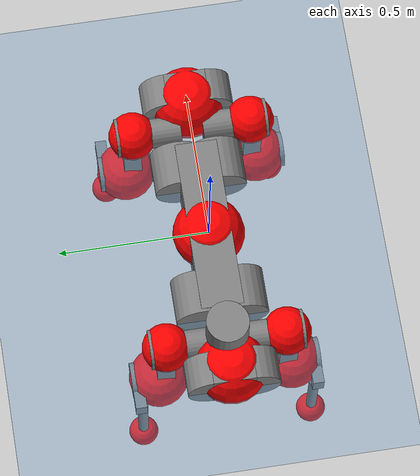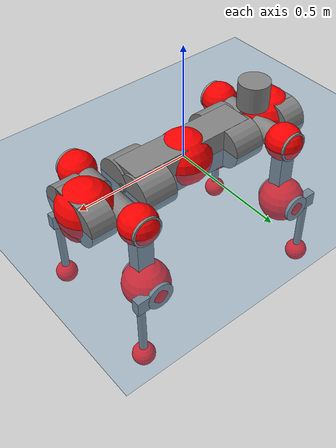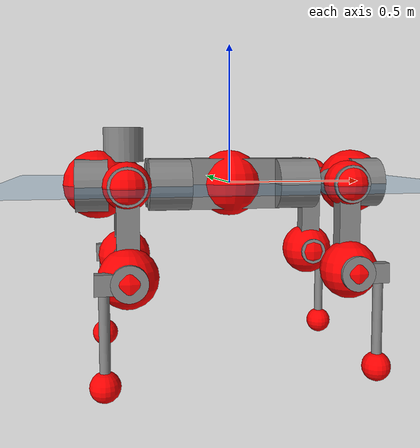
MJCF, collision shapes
<mujoco model="anymal_c">
  <compiler angle="radian" assetdir="assets" balanceinertia="true" inertiafromgeom="false"/>

  <option timestep="0.005" density="1.2" viscosity="2e-05"/>

  <size nkey="1"/>

  <visual>
    <quality shadowsize="8192"/>
    <map shadowclip="0.5"/>
  </visual>

  <default>
    <default class="/">
      <material specular="0" shininess="0.25"/>
      <geom contype="0" conaffinity="0" group="1" solref="-1000 -80"/>
      <site size="0.01 0.005 0.005" group="5"/>
      <general forcelimited="true" forcerange="-80 80" biastype="affine" gainprm="80" biasprm="0 -80 -2"/>
      <default class="anymal_c">
        <joint armature="0.01" damping="0.01" frictionloss="0.1"/>
        <default class="visual">
          <geom type="mesh" group="2"/>
          <default class="visual_zflip"/>
        </default>
        <default class="collision">
          <geom type="cylinder" group="3"/>
          <default class="foot">
            <geom size="0.03 0 0" type="sphere" condim="6" priority="1" friction="0.8 0.02 0.01" solimp="0.015 1 0.03"/>
          </default>
        </default>
      </default>
      <default class="reward_collision_sphere">
        <geom group="5" rgba="1 0 0 1"/>
      </default>
    </default>
  </default>

  <asset>
    <texture type="skybox" colorspace="auto" name="//unnamed_texture_0" builtin="gradient" rgb1="0.95 0.95 0.95" rgb2="0.95 0.95 0.95" width="100" height="600"/>
    <texture type="2d" colorspace="auto" name="texplane" builtin="checker" rgb1="0.345 0.575 0.748" rgb2="0.345 0.575 0.748" markrgb="1 1 1" width="512" height="512"/>
    <texture type="2d" colorspace="linear" name="base" file="base.png"/>
    <texture type="2d" colorspace="linear" name="top_shell" file="top_shell.png"/>
    <texture type="2d" colorspace="linear" name="bottom_shell" file="bottom_shell.png"/>
    <texture type="2d" colorspace="linear" name="remote" file="remote.png"/>
    <texture type="2d" colorspace="linear" name="hatch" file="hatch.png"/>
    <texture type="2d" colorspace="linear" name="handle" file="handle.png"/>
    <texture type="2d" colorspace="linear" name="face" file="face.png"/>
    <texture type="2d" colorspace="linear" name="battery" file="battery.png"/>
    <texture type="2d" colorspace="linear" name="lidar_cage" file="lidar_cage.png"/>
    <texture type="2d" colorspace="linear" name="depth_camera" file="depth_camera.png"/>
    <texture type="2d" colorspace="linear" name="wide_angle_camera" file="wide_angle_camera.png"/>
    <texture type="2d" colorspace="linear" name="lidar" file="lidar.png"/>
    <texture type="2d" colorspace="linear" name="drive" file="drive.png"/>
    <texture type="2d" colorspace="linear" name="hip_l" file="hip_l.png"/>
    <texture type="2d" colorspace="linear" name="shank_l" file="shank_l.png"/>
    <texture type="2d" colorspace="linear" name="foot" file="foot.png"/>
    <texture type="2d" colorspace="linear" name="thigh" file="thigh.png"/>
    <texture type="2d" colorspace="linear" name="shank_r" file="shank_r.png"/>
    <texture type="2d" colorspace="linear" name="hip_r" file="hip_r.png"/>
    <material name="MatPlane" class="/" texture="texplane" texuniform="true" texrepeat="2 2" specular="0.9" shininess="0.5"/>
    <material name="black_plastic" class="/" rgba="0.007 0.007 0.007 1"/>
    <material name="green" class="/" rgba="0.052 0.178 0.033 1"/>
    <material name="red" class="/" rgba="0.178 0.006 0.005 1"/>
    <material name="yellow" class="/" rgba="0.178 0.119 0.006 1"/>
    <material name="lwl" class="/" rgba="0.8 0.8 0.8 1"/>
    <material name="base" class="/" texture="base"/>
    <material name="top_shell" class="/" texture="top_shell"/>
    <material name="bottom_shell" class="/" texture="bottom_shell"/>
    <material name="hip_l" class="/" texture="hip_l"/>
    <material name="thigh" class="/" texture="thigh"/>
    <material name="shank_l" class="/" texture="shank_l"/>
    <material name="foot" class="/" texture="foot"/>
    <material name="hip_r" class="/" texture="hip_r"/>
    <material name="shank" class="/" texture="shank_r"/>
    <material name="hatch" class="/" texture="hatch"/>
    <material name="remote" class="/" texture="remote"/>
    <material name="handle" class="/" texture="handle"/>
    <material name="face" class="/" texture="face"/>
    <material name="depth_camera" class="/" texture="depth_camera"/>
    <material name="wide_angle_camera" class="/" texture="wide_angle_camera"/>
    <material name="battery" class="/" texture="battery"/>
    <material name="lidar_cage" class="/" texture="lidar_cage"/>
    <material name="lidar" class="/" texture="lidar"/>
    <material name="drive" class="/" texture="drive"/>
    <mesh name="base_0" class="/" file="base_0.obj"/>
    <mesh name="base_1" class="/" file="base_1.obj"/>
    <mesh name="base_2" class="/" file="base_2.obj"/>
    <mesh name="base_3" class="/" file="base_3.obj"/>
    <mesh name="base_4" class="/" file="base_4.obj"/>
    <mesh name="base_5" class="/" file="base_5.obj"/>
    <mesh name="top_shell" class="/" file="top_shell.obj"/>
    <mesh name="bottom_shell" class="/" file="bottom_shell.obj"/>
    <mesh name="remote" class="/" file="remote.obj"/>
    <mesh name="handle" class="/" file="handle.obj"/>
    <mesh name="face" class="/" file="face.obj"/>
    <mesh name="wide_angle_camera" class="/" file="wide_angle_camera.obj"/>
    <mesh name="depth_camera" class="/" file="depth_camera.obj"/>
    <mesh name="battery" class="/" file="battery.obj"/>
    <mesh name="lidar_cage" class="/" file="lidar_cage.obj"/>
    <mesh name="lidar" class="/" file="lidar.obj"/>
    <mesh name="drive" class="/" file="drive.obj"/>
    <mesh name="hip_l" class="/" file="hip_l.obj"/>
    <mesh name="thigh" class="/" file="thigh.obj"/>
    <mesh name="shank_l" class="/" file="shank_l.obj"/>
    <mesh name="foot" class="/" file="foot.obj"/>
    <mesh name="hip_r" class="/" file="hip_r.obj"/>
    <mesh name="hatch" class="/" file="hatch.obj"/>
    <mesh name="shank_r" class="/" file="shank_r.obj"/>
  </asset>

  <worldbody>
    <geom name="floor" class="/" size="100 100 0.125" type="plane" group="0" material="MatPlane"/>
    <light name="toplight_shadow" class="/" pos="0 0 5" dir="0.0990148 0.0990148 -0.990148" type="directional" ambient="0.04 0.04 0.04" diffuse="0.55 0.55 0.55" specular="0.12 0.12 0.12"/>
    <light name="toplight_fill" class="/" pos="0 0 5" dir="0.0990148 0.0990148 -0.990148" type="directional" castshadow="false" ambient="0.04 0.04 0.04" diffuse="0.3 0.3 0.3" specular="0.08 0.08 0.08"/>
    <body name="trunk" childclass="anymal_c" pos="-0.000181704 0.000865226 -0.000355312" quat="1 0.000331399 -0.000260521 -9.98461e-05">
      <inertial pos="0.00325982 -0.000428162 0.0510492" quat="0.5008 0.502365 0.499034 0.497788" mass="18.718" diaginertia="0.803483 0.369761 0.267195"/>
      <joint name="//unnamed_joint_0" type="free" armature="0" damping="0" frictionloss="0"/>
      <geom name="//unnamed_geom_1" class="visual" material="green" mesh="base_0"/>
      <geom name="//unnamed_geom_2" class="visual" material="yellow" mesh="base_1"/>
      <geom name="//unnamed_geom_3" class="visual" material="red" mesh="base_2"/>
      <geom name="//unnamed_geom_4" class="visual" material="black_plastic" mesh="base_3"/>
      <geom name="//unnamed_geom_5" class="visual" material="lwl" mesh="base_4"/>
      <geom name="//unnamed_geom_6" class="visual" material="base" mesh="base_5"/>
      <geom name="trunk_1" class="collision" size="0.289782 0.0699475 0.0899325" type="box"/>
      <geom name="trunk_2" class="collision" size="0.0899325 0.0724456" pos="0.228291 0.0631442 0" quat="0.707107 0 0.707107 0"/>
      <geom name="trunk_3" class="collision" size="0.0899325 0.0724456" pos="-0.228291 0.0631442 0" quat="0.707107 0 0.707107 0"/>
      <geom name="trunk_4" class="collision" size="0.0899325 0.0724456" pos="0.228291 -0.0631442 0" quat="0.707107 0 0.707107 0"/>
      <geom name="trunk_5" class="collision" size="0.0899325 0.0724456" pos="-0.228291 -0.0631442 0" quat="0.707107 0 0.707107 0"/>
      <geom name="//unnamed_geom_12" class="visual" material="top_shell" mesh="top_shell"/>
      <geom name="//unnamed_geom_13" class="visual" material="bottom_shell" mesh="bottom_shell"/>
      <geom name="//unnamed_geom_14" class="visual" material="remote" mesh="remote"/>
      <geom name="//unnamed_geom_15" class="visual" material="handle" mesh="handle"/>
      <geom name="//unnamed_geom_16" class="visual" pos="0.435064 0 0" quat="1 0 0 0" material="face" mesh="face"/>
      <geom name="trunk_6" class="collision" size="0.0549587 0.0699475 0.0899325" pos="0.492793 0 0" type="box"/>
      <geom name="//unnamed_geom_18" class="collision" size="0.0899325 0.0549587" pos="0.492793 0.0631442 0" quat="0.707107 0 0.707107 0"/>
      <geom name="//unnamed_geom_19" class="collision" size="0.0899325 0.0549587" pos="0.492793 -0.0631442 0" quat="0.707107 0 0.707107 0"/>
      <geom name="//unnamed_geom_20" class="visual" pos="0.484553 0 -0.0305186" quat="0.965926 0 0.258819 0" material="depth_camera" mesh="depth_camera"/>
      <geom name="//unnamed_geom_21" class="visual" pos="0.538451 0 0.0156598" material="wide_angle_camera" mesh="wide_angle_camera"/>
      <geom name="//unnamed_geom_22" class="visual_zflip" pos="-0.435064 0 0" quat="0 0 0 1" material="face" mesh="face"/>
      <geom name="trunk_7" class="collision" size="0.0549587 0.0699475 0.0899325" pos="-0.492793 0 0" quat="0 0 0 1" type="box"/>
      <geom name="//unnamed_geom_24" class="collision" size="0.0899325 0.0549587" pos="-0.492793 -0.0631442 0" quat="0 -0.707107 0 0.707107"/>
      <geom name="//unnamed_geom_25" class="collision" size="0.0899325 0.0549587" pos="-0.492793 0.0631442 0" quat="0 -0.707107 0 0.707107"/>
      <geom name="//unnamed_geom_26" class="visual" pos="-0.484553 0 -0.0305186" quat="0 -0.258819 0 0.965926" material="depth_camera" mesh="depth_camera"/>
      <geom name="//unnamed_geom_27" class="visual_zflip" pos="-0.538451 0 0.0156598" quat="0 0 0 1" material="wide_angle_camera" mesh="wide_angle_camera"/>
      <geom name="//unnamed_geom_28" class="visual" material="battery" mesh="battery"/>
      <geom name="//unnamed_geom_29" class="visual" pos="0 0.0670352 0.0304154" quat="0.683013 -0.183013 0.183013 0.683013" material="depth_camera" mesh="depth_camera"/>
      <geom name="//unnamed_geom_30" class="visual" pos="0 -0.0670352 0.0304154" quat="0.683013 0.183013 0.183013 -0.683013" material="depth_camera" mesh="depth_camera"/>
      <geom name="//unnamed_geom_31" class="visual" pos="-0.382059 0 0.0768866" quat="1 0 0 0" material="lidar_cage" mesh="lidar_cage"/>
      <geom name="trunk_8" class="collision" size="0.0699475 0.059955" pos="-0.382059 0 0.139651"/>
      <geom name="//unnamed_geom_33" class="visual" pos="-0.382059 -5.7969e-05 0.148752" quat="0.707107 0 0 -0.707107" material="lidar" mesh="lidar"/>
      <geom name="//unnamed_geom_34" class="visual" pos="0.314779 0.0938655 -2.48429e-09" quat="0.258819 0.965926 0 0" material="drive" mesh="drive"/>
      <geom name="//unnamed_geom_35" class="visual" pos="0.314779 -0.0938655 2.48429e-09" quat="0.258819 -0.965926 0 0" material="drive" mesh="drive"/>
      <geom name="//unnamed_geom_36" class="visual" pos="-0.314779 0.0938655 2.48429e-09" quat="0 0 0.965926 -0.258819" material="drive" mesh="drive"/>
      <geom name="//unnamed_geom_37" class="visual" pos="-0.314779 -0.0938655 -2.48429e-09" quat="0 0 -0.965926 -0.258819" material="drive" mesh="drive"/>
      <geom name="//unnamed_geom_38" class="visual" pos="0.121755 0 0.0763636" quat="1 0 0 0" material="hatch" mesh="hatch"/>
      <geom name="//unnamed_geom_39" class="reward_collision_sphere" size="0.11991"/>
      <geom name="//unnamed_geom_40" class="reward_collision_sphere" size="0.11991" pos="0.472325 0 0"/>
      <geom name="//unnamed_geom_41" class="reward_collision_sphere" size="0.11991" pos="-0.472325 0 0"/>
      <site name="imu" pos="0.262418 0.00649987 0.0474169" size="0.0099925"/>
      <camera name="track" pos="0 -1.80412 0" quat="0.707107 0.707107 0 0" mode="trackcom"/>
      <camera name="ego_camera" pos="0.472325 0 -0.0418431" quat="-0.5 -0.5 0.5 0.5"/>
      <body name="LF_HIP" pos="0.315002 0.0942245 0.00018215" quat="0.258946 0.965892 -6.50456e-05 -3.40474e-05">
        <inertial pos="0.0595602 -0.0128145 -0.00863065" quat="-0.126804 0.71082 -0.132124 0.679116" mass="2.79471" diaginertia="0.00752401 0.00296587 0.00414858"/>
        <joint name="LF_HAA" pos="0 0 0" axis="0.999999 -0.00122506 0.000405715" range="-0.708305 0.482043" armature="0.0100734" damping="0.00947367" frictionloss="0.0997915"/>
        <geom name="//unnamed_geom_42" class="visual" pos="0 -0.000146139 2.40033e-05" quat="0.258819 -0.965926 0 0" material="hip_l" mesh="hip_l"/>
        <geom name="//unnamed_geom_43" class="visual" pos="0.0628718 -0.0742909 -0.0439571" quat="0.183013 -0.683013 0.683013 0.183013" material="drive" mesh="drive"/>
        <geom name="//unnamed_geom_44" class="collision" size="0.0499625 0.0699475" pos="0.0628718 -0.0107885 -0.00722316" quat="-0.353553 -0.612372 0.612372 -0.353553"/>
        <body name="LF_THIGH" pos="0.0626179 -0.0662841 -0.0437995" quat="0.183126 -0.68315 0.682851 0.182989">
          <inertial pos="0.0324017 0.000535218 -0.257124" quat="0.993156 -0.00498296 -0.0808698 0.0841259" mass="3.03969" diaginertia="0.0386984 0.017895 0.00523554"/>
          <joint name="LF_HFE" pos="0 0 0" axis="0.999994 -0.00341499 0.000836974" range="-3.12621 3.13955" armature="0.0101431" damping="0.00953774" frictionloss="0.103414"/>
          <geom name="//unnamed_geom_45" class="visual" pos="0.00293569 4.62596e-06 0" quat="0.707107 0 0 -0.707107" material="thigh" mesh="thigh"/>
          <geom name="//unnamed_geom_46" class="collision" size="0.0649512 0.03997" pos="0.0419845 0 0" quat="0.5 0.5 -0.5 -0.5"/>
          <geom name="//unnamed_geom_47" class="collision" size="0.0374719 0.0299775 0.141208" pos="0.0314884 0 -0.147825" quat="0.707107 0 0 -0.707107" type="box"/>
          <geom name="//unnamed_geom_48" class="visual" pos="0.105276 0 -0.298132" quat="1 0 0 0" material="drive" mesh="drive"/>
          <geom name="//unnamed_geom_49" class="collision" size="0.0499625 0.0699475" pos="0.0318032 0 -0.298132" quat="0.707107 0 0.707107 0"/>
          <geom name="//unnamed_geom_50" class="reward_collision_sphere" size="0.07994" pos="0.0262403 0 0"/>
          <body name="LF_SHANK" pos="0.105343 -0.000341847 -0.299299" quat="1 5.65946e-05 -5.09288e-06 -9.61548e-05">
            <inertial pos="0.00604843 -0.0544279 -0.0837576" quat="0.992952 -0.115774 -0.000339316 -0.0253406" mass="0.594887" diaginertia="0.0130749 0.00556815 0.00142121"/>
            <joint name="LF_KFE" pos="0 0 0" axis="1 0.000478898 1.56181e-05" range="-3.13195 3.12453" armature="0.0103606" damping="0.00810891" frictionloss="0.101343"/>
            <geom name="//unnamed_geom_51" class="visual" pos="0.000957265 0.00510419 0" quat="0.707107 0 0 -0.707107" material="shank_l" mesh="shank_l"/>
            <geom name="LF_kfe_act" class="collision" size="0.059955 0.019985" pos="0.0209922 0 0" quat="0.5 0.5 -0.5 -0.5"/>
            <geom name="//unnamed_geom_53" class="collision" size="0.0574559 0.0337247 0.0189857" pos="0.0209922 -0.0518676 0" quat="0.5 0.5 -0.5 -0.5" type="box"/>
            <geom name="//unnamed_geom_54" class="visual" pos="0.0136972 -0.0776914 -0.353542" quat="0.382683 0 0 -0.92388" material="foot" mesh="foot"/>
            <geom name="LF_calf" class="collision" size="0.0174869 0.141146" pos="0.0136974 -0.0793362 -0.176771" quat="0.707107 0 0 -0.707107"/>
            <geom name="LF_foot" class="foot" size="0.029889" pos="0.0136974 -0.0793362 -0.330006" quat="0.707107 0 0 -0.707107"/>
            <geom name="//unnamed_geom_57" class="reward_collision_sphere" size="0.099925" pos="-0.0524806 0 0"/>
            <geom name="//unnamed_geom_58" class="reward_collision_sphere" size="0.0499625" pos="0.0136974 -0.0793362 -0.330006"/>
            <site name="LF_foot" class="foot" pos="0.0136974 -0.0793362 -0.330006" quat="0.707107 0 0 -0.707107" size="0.0099925"/>
          </body>
        </body>
      </body>
      <body name="RF_HIP" pos="0.315112 -0.0938612 -0.000521246" quat="0.25881 -0.965928 1.15515e-05 5.47881e-06">
        <inertial pos="0.0596587 0.0140124 -0.00849826" quat="0.13614 0.678453 0.12765 0.710544" mass="2.77992" diaginertia="0.00756244 0.00293856 0.00414176"/>
        <joint name="RF_HAA" pos="0 0 0" axis="0.999998 0.00187632 -0.00112113" range="-0.498824 0.713768" armature="0.0102242" damping="0.00815819" frictionloss="0.102094"/>
        <geom name="//unnamed_geom_59" class="visual" pos="0 0.000146138 2.40032e-05" quat="0.258819 0.965926 0 0" material="hip_r" mesh="hip_r"/>
        <geom name="//unnamed_geom_60" class="visual" pos="0.0628718 0.0742909 -0.0439571" quat="0.183013 0.683013 0.683013 -0.183013" material="drive" mesh="drive"/>
        <geom name="//unnamed_geom_61" class="collision" size="0.0499625 0.0699475" pos="0.0628718 0.0107885 -0.00722316" quat="-0.353553 0.612372 0.612372 0.353553"/>
        <body name="RF_THIGH" pos="0.0631869 0.0657725 -0.0446869" quat="0.182956 0.682882 0.683206 -0.182837">
          <inertial pos="0.0318666 0.000821348 -0.25674" quat="0.992719 -0.00456122 -0.0806991 0.0893028" mass="3.07538" diaginertia="0.0388981 0.0178322 0.00523369"/>
          <joint name="RF_HFE" pos="0 0 0" axis="1 1.51517e-05 5.08968e-05" stiffness="0.00539545" range="-3.14616 3.14228" armature="0.010149" damping="0.0073738" frictionloss="0.10405"/>
          <geom name="//unnamed_geom_62" class="visual" pos="0.00293569 4.62596e-06 0" quat="0.707107 0 0 -0.707107" material="thigh" mesh="thigh"/>
          <geom name="//unnamed_geom_63" class="collision" size="0.0649512 0.03997" pos="0.0419845 0 0" quat="0.5 0.5 0.5 0.5"/>
          <geom name="//unnamed_geom_64" class="collision" size="0.0374719 0.0299775 0.141208" pos="0.0314884 0 -0.147825" quat="0.707107 0 0 0.707107" type="box"/>
          <geom name="//unnamed_geom_65" class="visual" pos="0.105276 0 -0.298132" quat="1 0 0 0" material="drive" mesh="drive"/>
          <geom name="//unnamed_geom_66" class="collision" size="0.0499625 0.0699475" pos="0.0318032 0 -0.298132" quat="0.707107 0 0.707107 0"/>
          <geom name="//unnamed_geom_67" class="reward_collision_sphere" size="0.07994" pos="0.0262403 0 0"/>
          <body name="RF_SHANK" pos="0.104822 0.000418116 -0.297557" quat="1 -0.000153363 7.0386e-05 -9.62516e-05">
            <inertial pos="0.00677006 0.0544327 -0.0842438" quat="0.992977 0.115496 -0.000451432 0.0256533" mass="0.589569" diaginertia="0.0130085 0.00548438 0.00142269"/>
            <joint name="RF_KFE" pos="0 0 0" axis="0.999995 0.0023288 0.00198153" range="-3.13839 3.14606" armature="0.00992437" damping="0.00376718" frictionloss="0.0994134"/>
            <geom name="//unnamed_geom_68" class="visual" pos="0.00095726 -0.00510418 0" quat="0.707107 0 0 0.707107" material="shank" mesh="shank_r"/>
            <geom name="RF_kfe_act" class="collision" size="0.059955 0.019985" pos="0.0209922 0 0" quat="0.5 0.5 0.5 0.5"/>
            <geom name="//unnamed_geom_70" class="collision" size="0.0574559 0.0337247 0.0189857" pos="0.0209922 0.0518676 0" quat="0.5 0.5 0.5 0.5" type="box"/>
            <geom name="//unnamed_geom_71" class="visual" pos="0.0136977 0.0776914 -0.353542" quat="0.382683 0 0 0.92388" material="foot" mesh="foot"/>
            <geom name="RF_calf" class="collision" size="0.0174869 0.141146" pos="0.0136974 0.0793362 -0.176771" quat="0.707107 0 0 0.707107"/>
            <geom name="RF_foot" class="foot" size="0.0281586" pos="0.0136974 0.0793362 -0.330006" quat="0.707107 0 0 0.707107"/>
            <geom name="//unnamed_geom_74" class="reward_collision_sphere" size="0.099925" pos="-0.0524806 0 0"/>
            <geom name="//unnamed_geom_75" class="reward_collision_sphere" size="0.0499625" pos="0.0136974 0.0793362 -0.330006"/>
            <site name="RF_foot" class="foot" pos="0.0136974 0.0793362 -0.330006" quat="0.707107 0 0 0.707107" size="0.0099925"/>
          </body>
        </body>
      </body>
      <body name="LH_HIP" pos="-0.314296 0.0933725 -0.000160726" quat="3.32662e-05 -1.83544e-05 0.965937 -0.258776">
        <inertial pos="0.0599954 0.0131046 -0.00948497" quat="0.135077 0.679063 0.130309 0.709681" mass="2.75725" diaginertia="0.00743008 0.00295709 0.00408489"/>
        <joint name="LH_HAA" pos="0 0 0" axis="1 0.00019185 0.000856057" range="-0.505711 0.717585" armature="0.00975019" damping="0.00858784" frictionloss="0.0961085"/>
        <geom name="//unnamed_geom_76" class="visual" pos="0 0.000146138 2.40032e-05" quat="-0.258819 -0.965926 0 0" material="hip_r" mesh="hip_r"/>
        <geom name="//unnamed_geom_77" class="visual" pos="0.0628718 0.0742909 -0.0439571" quat="0.183013 0.683013 0.683013 -0.183013" material="drive" mesh="drive"/>
        <geom name="//unnamed_geom_78" class="collision" size="0.0499625 0.0699475" pos="0.0628718 0.0107885 -0.00722316" quat="-0.353553 0.612372 0.612372 0.353553"/>
        <body name="LH_THIGH" pos="0.0622797 0.065494 -0.0449712" quat="0.183024 0.682891 0.683087 -0.183178">
          <inertial pos="0.0324143 0.000536605 -0.256658" quat="0.992422 -0.00453457 -0.0844919 0.0890971" mass="3.05716" diaginertia="0.0388893 0.0177079 0.00522281"/>
          <joint name="LH_HFE" pos="0 0 0" axis="0.999999 0.000782341 0.000948477" range="-3.14192 3.14164" armature="0.00955977" damping="0.00443583" frictionloss="0.103467"/>
          <geom name="//unnamed_geom_79" class="visual" pos="0.00293569 4.62596e-06 0" quat="0.707107 0 0 -0.707107" material="thigh" mesh="thigh"/>
          <geom name="//unnamed_geom_80" class="collision" size="0.0649512 0.03997" pos="0.0419845 0 0" quat="0.5 0.5 -0.5 -0.5"/>
          <geom name="//unnamed_geom_81" class="collision" size="0.0374719 0.0299775 0.141208" pos="0.0314884 0 -0.147825" quat="0.707107 0 0 -0.707107" type="box"/>
          <geom name="//unnamed_geom_82" class="visual" pos="0.105276 0 -0.298132" quat="1 0 0 0" material="drive" mesh="drive"/>
          <geom name="//unnamed_geom_83" class="collision" size="0.0499625 0.0699475" pos="0.0318032 0 -0.298132" quat="0.707107 0 0.707107 0"/>
          <geom name="//unnamed_geom_84" class="reward_collision_sphere" size="0.07994" pos="0.0262403 0 0"/>
          <body name="LH_SHANK" pos="0.105437 -0.000241367 -0.298777" quat="1 -6.69924e-05 -0.000112721 -0.000274965">
            <inertial pos="0.00565461 0.0545093 -0.0840327" quat="0.993058 0.114716 -0.00100433 0.0259817" mass="0.585609" diaginertia="0.0131137 0.00558727 0.00141826"/>
            <joint name="LH_KFE" pos="0 0 0" axis="0.999989 -0.00167811 0.00444013" range="-3.1407 3.13755" armature="0.0102113" damping="0.0050755" frictionloss="0.104186"/>
            <geom name="//unnamed_geom_85" class="visual" pos="0.00095726 -0.00510418 0" quat="-0.707107 0 0 -0.707107" material="shank" mesh="shank_r"/>
            <geom name="LH_kfe_act" class="collision" size="0.059955 0.019985" pos="0.0209922 0 0" quat="0.5 0.5 -0.5 -0.5"/>
            <geom name="//unnamed_geom_87" class="collision" size="0.0574559 0.0337247 0.0189857" pos="0.0209922 0.0518676 0" quat="0.5 0.5 -0.5 -0.5" type="box"/>
            <geom name="//unnamed_geom_88" class="visual" pos="0.0136977 0.0776914 -0.353542" quat="-0.382683 0 0 -0.92388" material="foot" mesh="foot"/>
            <geom name="LH_calf" class="collision" size="0.0174869 0.141146" pos="0.0136974 0.0793362 -0.176771" quat="0.707107 0 0 -0.707107"/>
            <geom name="LH_foot" class="foot" size="0.0317273" pos="0.0136974 0.0793362 -0.330006" quat="0.707107 0 0 -0.707107"/>
            <geom name="//unnamed_geom_91" class="reward_collision_sphere" size="0.099925" pos="-0.0524806 0 0"/>
            <geom name="//unnamed_geom_92" class="reward_collision_sphere" size="0.0499625" pos="0.0136974 0.0793362 -0.330006"/>
            <site name="LH_foot" class="foot" pos="0.0136974 0.0793362 -0.330006" quat="0.707107 0 0 -0.707107" size="0.0099925"/>
          </body>
        </body>
      </body>
      <body name="RH_HIP" pos="-0.315085 -0.0935226 0.000297385" quat="0.000391224 -6.1377e-05 -0.965947 -0.258739">
        <inertial pos="0.05929 -0.0142663 -0.00898977" quat="-0.127732 0.709773 -0.135476 0.679377" mass="2.7932" diaginertia="0.00751494 0.00296974 0.00418251"/>
        <joint name="RH_HAA" pos="0 0 0" axis="1 0.000622479 0.000410432" range="-0.732212 0.475069" armature="0.00990135" damping="0.0119414" frictionloss="0.0958911"/>
        <geom name="//unnamed_geom_93" class="visual" pos="0 -0.000146139 2.40033e-05" quat="-0.258819 0.965926 0 0" material="hip_l" mesh="hip_l"/>
        <geom name="//unnamed_geom_94" class="visual" pos="0.0628718 -0.0742909 -0.0439571" quat="-0.183013 0.683013 -0.683013 -0.183013" material="drive" mesh="drive"/>
        <geom name="//unnamed_geom_95" class="collision" size="0.0499625 0.0699475" pos="0.0628718 -0.0107885 -0.00722316" quat="0.353553 0.612372 -0.612372 0.353553"/>
        <body name="RH_THIGH" pos="0.0636057 -0.0665736 -0.0442054" quat="-0.183011 0.683028 -0.683021 -0.182926">
          <inertial pos="0.03249 0.00075863 -0.256591" quat="0.993183 -0.00480359 -0.0802802 0.0843758" mass="3.09674" diaginertia="0.0388638 0.0178649 0.00532903"/>
          <joint name="RH_HFE" pos="0 0 0" axis="1 -1.65855e-05 -0.000193362" range="-3.14637 3.155" armature="0.00985555" damping="0.00470587" frictionloss="0.101389"/>
          <geom name="//unnamed_geom_96" class="visual" pos="0.00293569 4.62596e-06 0" quat="0.707107 0 0 -0.707107" material="thigh" mesh="thigh"/>
          <geom name="//unnamed_geom_97" class="collision" size="0.0649512 0.03997" pos="0.0419845 0 0" quat="0.5 0.5 0.5 0.5"/>
          <geom name="//unnamed_geom_98" class="collision" size="0.0374719 0.0299775 0.141208" pos="0.0314884 0 -0.147825" quat="0.707107 0 0 0.707107" type="box"/>
          <geom name="//unnamed_geom_99" class="visual" pos="0.105276 0 -0.298132" quat="1 0 0 0" material="drive" mesh="drive"/>
          <geom name="//unnamed_geom_100" class="collision" size="0.0499625 0.0699475" pos="0.0318032 0 -0.298132" quat="0.707107 0 0.707107 0"/>
          <geom name="//unnamed_geom_101" class="reward_collision_sphere" size="0.07994" pos="0.0262403 0 0"/>
          <body name="RH_SHANK" pos="0.104332 -0.000132663 -0.297979" quat="1 -3.77574e-05 3.06389e-05 -4.93284e-05">
            <inertial pos="0.00653108 -0.0548481 -0.0842474" quat="0.992934 -0.115926 -0.00124938 -0.025328" mass="0.581426" diaginertia="0.0130325 0.0054923 0.00140847"/>
            <joint name="RH_KFE" pos="0 0 0" axis="0.999978 -0.00347007 0.00573182" range="-3.12828 3.12747" armature="0.0100679" damping="0.00590354" frictionloss="0.0965676"/>
            <geom name="//unnamed_geom_102" class="visual" pos="0.000957265 0.00510419 0" quat="0.707107 0 0 -0.707107" material="shank_l" mesh="shank_l"/>
            <geom name="RH_kfe_act" class="collision" size="0.059955 0.019985" pos="0.0209922 0 0" quat="0.5 0.5 0.5 0.5"/>
            <geom name="//unnamed_geom_104" class="collision" size="0.0574559 0.0337247 0.0189857" pos="0.0209922 -0.0518676 0" quat="0.5 0.5 0.5 0.5" type="box"/>
            <geom name="//unnamed_geom_105" class="visual" pos="0.0136972 -0.0776914 -0.353542" quat="0.382683 0 0 -0.92388" material="foot" mesh="foot"/>
            <geom name="RH_calf" class="collision" size="0.0174869 0.141146" pos="0.0136974 -0.0793362 -0.176771" quat="0.707107 0 0 0.707107"/>
            <geom name="RH_foot" class="foot" size="0.0280992" pos="0.0136974 -0.0793362 -0.330006" quat="0.707107 0 0 0.707107"/>
            <geom name="//unnamed_geom_108" class="reward_collision_sphere" size="0.099925" pos="-0.0524806 0 0"/>
            <geom name="//unnamed_geom_109" class="reward_collision_sphere" size="0.0499625" pos="0.0136974 -0.0793362 -0.330006"/>
            <site name="RH_foot" class="foot" pos="0.0136974 -0.0793362 -0.330006" quat="0.707107 0 0 0.707107" size="0.0099925"/>
          </body>
        </body>
      </body>
    </body>
  </worldbody>

  <contact>
    <pair class="/" geom1="floor" geom2="LF_foot" name="//unnamed_contact_0"/>
    <pair class="/" geom1="floor" geom2="RF_foot" name="//unnamed_contact_1"/>
    <pair class="/" geom1="floor" geom2="LH_foot" name="//unnamed_contact_2"/>
    <pair class="/" geom1="floor" geom2="RH_foot" name="//unnamed_contact_3"/>
  </contact>

  <actuator>
    <general name="LF_HAA" class="/" joint="LF_HAA" forcerange="-78.6871 78.6871" gainprm="80.4415" biasprm="0 -80.4415 -1.89958"/>
    <general name="LF_HFE" class="/" joint="LF_HFE" forcerange="-80.2264 80.2264" gainprm="80.4415" biasprm="0 -80.4415 -1.89958"/>
    <general name="LF_KFE" class="/" joint="LF_KFE" forcerange="-79.3091 79.3091" gainprm="80.4415" biasprm="0 -80.4415 -1.89958"/>
    <general name="RF_HAA" class="/" joint="RF_HAA" forcerange="-82.0517 82.0517" gainprm="80.4415" biasprm="0 -80.4415 -1.89958"/>
    <general name="RF_HFE" class="/" joint="RF_HFE" forcerange="-81.6934 81.6934" gainprm="80.4415" biasprm="0 -80.4415 -1.89958"/>
    <general name="RF_KFE" class="/" joint="RF_KFE" forcerange="-82.6165 82.6165" gainprm="80.4415" biasprm="0 -80.4415 -1.89958"/>
    <general name="LH_HAA" class="/" joint="LH_HAA" forcerange="-79.0057 79.0057" gainprm="80.4415" biasprm="0 -80.4415 -1.89958"/>
    <general name="LH_HFE" class="/" joint="LH_HFE" forcerange="-80.2978 80.2978" gainprm="80.4415" biasprm="0 -80.4415 -1.89958"/>
    <general name="LH_KFE" class="/" joint="LH_KFE" forcerange="-81.1324 81.1324" gainprm="80.4415" biasprm="0 -80.4415 -1.89958"/>
    <general name="RH_HAA" class="/" joint="RH_HAA" forcerange="-81.1137 81.1137" gainprm="80.4415" biasprm="0 -80.4415 -1.89958"/>
    <general name="RH_HFE" class="/" joint="RH_HFE" forcerange="-80.2819 80.2819" gainprm="80.4415" biasprm="0 -80.4415 -1.89958"/>
    <general name="RH_KFE" class="/" joint="RH_KFE" forcerange="-79.3142 79.3142" gainprm="80.4415" biasprm="0 -80.4415 -1.89958"/>
  </actuator>

  <sensor>
    <gyro site="imu" name="imu_angular_velocity"/>
    <velocimeter site="imu" name="imu_linear_velocity"/>
    <framelinvel objtype="site" objname="LF_foot" name="LF_foot_global_linear_velocity"/>
    <framelinvel objtype="site" objname="RF_foot" name="RF_foot_global_linear_velocity"/>
    <framelinvel objtype="site" objname="LH_foot" name="LH_foot_global_linear_velocity"/>
    <framelinvel objtype="site" objname="RH_foot" name="RH_foot_global_linear_velocity"/>
  </sensor>

  <keyframe>
    <key name="home" qpos="0 0 0.55 1 0 0 0 0 0.4 -0.8 0 -0.4 0.8 0 -0.4 0.8 0 0.4 -0.8"/>
  </keyframe>
</mujoco>
